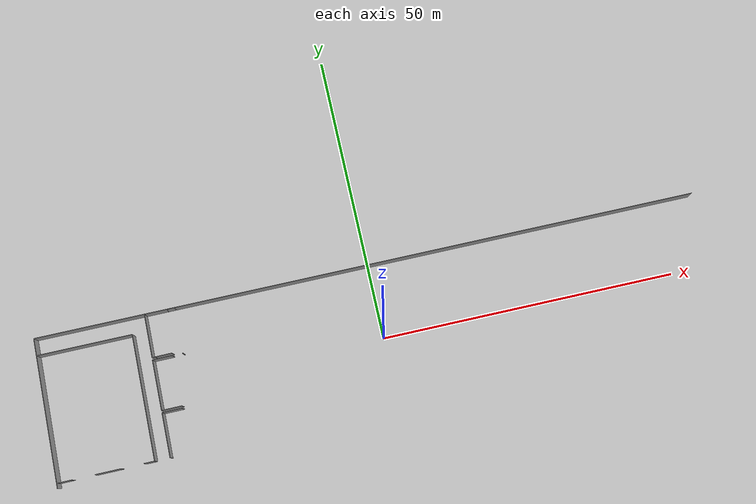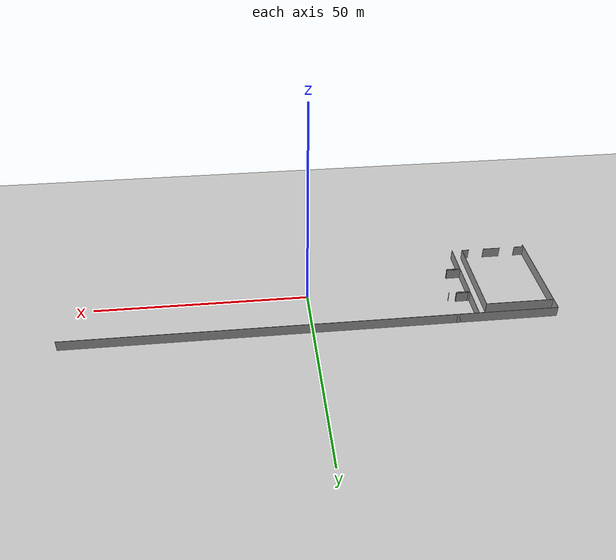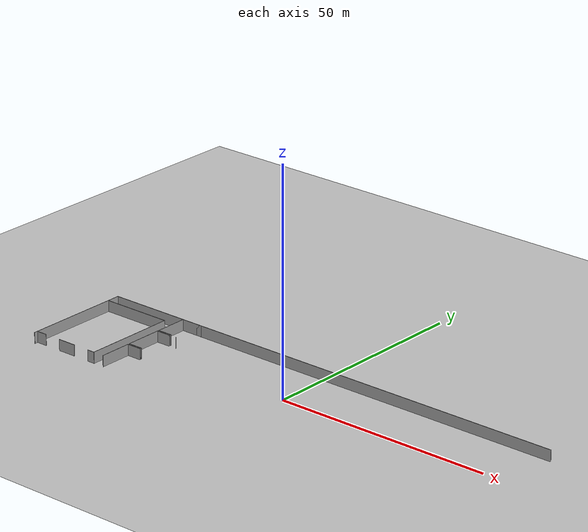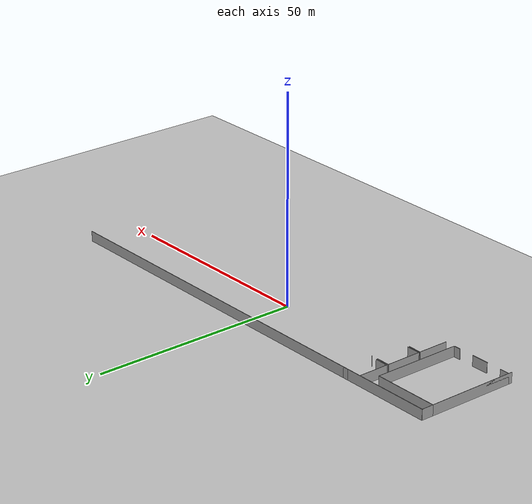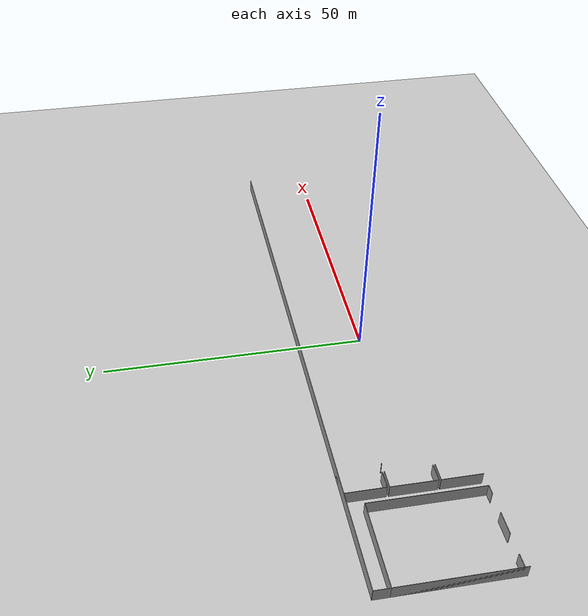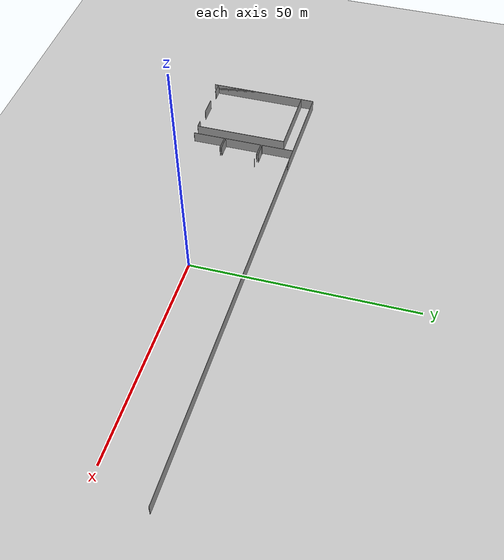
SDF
<sdf version="1.6">
 <world name="default">
  <model name="ground_plane">
   <static>1</static>
   <link name="link">
    <collision name="collision">
     <geometry><plane><normal>0 0 1</normal><size>100 100</size></plane></geometry>
     <surface><friction><ode><mu>100</mu><mu2>50</mu2></ode></friction></surface>
    </collision>
    <visual name="visual">
     <cast_shadows>0</cast_shadows>
     <geometry><plane><normal>0 0 1</normal><size>100 100</size></plane></geometry>
     <material>
      <script><uri>file://media/materials/scripts/gazebo.material</uri><name>Gazebo/Grey</name></script>
     </material>
    </visual>
   </link>
  </model>
  <model name="0510034691_Layout1">
   <static>1</static>
   <link name="Wall_0">
    <collision name="Wall_0_Collision">
     <geometry><box><size>21.0787005262 0.1 2.5</size></box></geometry>
     <pose>10.5393502631 0 1.25 0 0 0</pose>
    </collision>
    <visual name="Wall_0_Visual">
     <pose>10.5393502631 0 1.25 0 0 0</pose>
     <geometry><box><size>21.0787005262 0.1 2.5</size></box></geometry>
     <material>
      <script><uri>file://media/materials/scripts/gazebo.material</uri><name>Gazebo/Grey</name></script>
      <ambient>1 1 1 1</ambient>
     </material>
    </visual>
    <pose>0.0 -23.9743003127 0 0 0 1.57079632679</pose>
   </link>
   <link name="Wall_1">
    <collision name="Wall_1_Collision">
     <geometry><box><size>15.9957040087 0.1 2.5</size></box></geometry>
     <pose>7.99785200437 0 1.25 0 0 0</pose>
    </collision>
    <visual name="Wall_1_Visual">
     <pose>7.99785200437 0 1.25 0 0 0</pose>
     <geometry><box><size>15.9957040087 0.1 2.5</size></box></geometry>
     <material>
      <script><uri>file://media/materials/scripts/gazebo.material</uri><name>Gazebo/Grey</name></script>
      <ambient>1 1 1 1</ambient>
     </material>
    </visual>
    <pose>0.0 -2.89559978647 0 0 0 0.0</pose>
   </link>
   <link name="Wall_2">
    <collision name="Wall_2_Collision">
     <geometry><box><size>21.0752688172 0.1 2.5</size></box></geometry>
     <pose>10.5376344086 0 1.25 0 0 0</pose>
    </collision>
    <visual name="Wall_2_Visual">
     <pose>10.5376344086 0 1.25 0 0 0</pose>
     <geometry><box><size>21.0752688172 0.1 2.5</size></box></geometry>
     <material>
      <script><uri>file://media/materials/scripts/gazebo.material</uri><name>Gazebo/Grey</name></script>
      <ambient>1 1 1 1</ambient>
     </material>
    </visual>
    <pose>15.9957040087 -2.89559978647 0 0 0 -1.57079632679</pose>
   </link>
   <link name="Wall_3">
    <collision name="Wall_3_Collision">
     <geometry><box><size>1.72945423117 0.1 2.5</size></box></geometry>
     <pose>0.864727115585 0 1.25 0 0 0</pose>
    </collision>
    <visual name="Wall_3_Visual">
     <pose>0.864727115585 0 1.25 0 0 0</pose>
     <geometry><box><size>1.72945423117 0.1 2.5</size></box></geometry>
     <material>
      <script><uri>file://media/materials/scripts/gazebo.material</uri><name>Gazebo/Grey</name></script>
      <ambient>1 1 1 1</ambient>
     </material>
    </visual>
    <pose>15.9957040087 -23.9708686037 0 0 0 3.14159265359</pose>
   </link>
   <link name="Wall_4">
    <collision name="Wall_4_Collision">
     <geometry><box><size>4.24299041663 0.1 2.5</size></box></geometry>
     <pose>2.12149520832 0 1.25 0 0 0</pose>
    </collision>
    <visual name="Wall_4_Visual">
     <pose>2.12149520832 0 1.25 0 0 0</pose>
     <geometry><box><size>4.24299041663 0.1 2.5</size></box></geometry>
     <material>
      <script><uri>file://media/materials/scripts/gazebo.material</uri><name>Gazebo/Grey</name></script>
      <ambient>1 1 1 1</ambient>
     </material>
    </visual>
    <pose>10.4819644627 -23.9708686037 0 0 0 3.14159265359</pose>
   </link>
   <link name="Wall_5">
    <collision name="Wall_5_Collision">
     <geometry><box><size>2.45456402988 0.1 2.5</size></box></geometry>
     <pose>1.22728201494 0 1.25 0 0 0</pose>
    </collision>
    <visual name="Wall_5_Visual">
     <pose>1.22728201494 0 1.25 0 0 0</pose>
     <geometry><box><size>2.45456402988 0.1 2.5</size></box></geometry>
     <material>
      <script><uri>file://media/materials/scripts/gazebo.material</uri><name>Gazebo/Grey</name></script>
      <ambient>1 1 1 1</ambient>
     </material>
    </visual>
    <pose>2.45456163095 -23.9708686037 0 0 0 -3.14019456005</pose>
   </link>
   <link name="Wall_6">
    <collision name="Wall_6_Collision">
     <geometry><box><size>0.585424133811 0.1 2.5</size></box></geometry>
     <pose>0.292712066906 0 1.25 0 0 0</pose>
    </collision>
    <visual name="Wall_6_Visual">
     <pose>0.292712066906 0 1.25 0 0 0</pose>
     <geometry><box><size>0.585424133811 0.1 2.5</size></box></geometry>
     <material>
      <script><uri>file://media/materials/scripts/gazebo.material</uri><name>Gazebo/Grey</name></script>
      <ambient>1 1 1 1</ambient>
     </material>
    </visual>
    <pose>19.1292356186 -7.39914588576 0 0 0 3.14159265359</pose>
   </link>
   <link name="Wall_7">
    <collision name="Wall_7_Collision">
     <geometry><box><size>7.39914588576 0.1 2.5</size></box></geometry>
     <pose>3.69957294288 0 1.25 0 0 0</pose>
    </collision>
    <visual name="Wall_7_Visual">
     <pose>3.69957294288 0 1.25 0 0 0</pose>
     <geometry><box><size>7.39914588576 0.1 2.5</size></box></geometry>
     <material>
      <script><uri>file://media/materials/scripts/gazebo.material</uri><name>Gazebo/Grey</name></script>
      <ambient>1 1 1 1</ambient>
     </material>
    </visual>
    <pose>18.5438114848 -7.39914588576 0 0 0 1.57079632679</pose>
   </link>
   <link name="Wall_8">
    <collision name="Wall_8_Collision">
     <geometry><box><size>1.32972368388 0.1 2.5</size></box></geometry>
     <pose>0.664861841938 0 1.25 0 0 0</pose>
    </collision>
    <visual name="Wall_8_Visual">
     <pose>0.664861841938 0 1.25 0 0 0</pose>
     <geometry><box><size>1.32972368388 0.1 2.5</size></box></geometry>
     <material>
      <script><uri>file://media/materials/scripts/gazebo.material</uri><name>Gazebo/Grey</name></script>
      <ambient>1 1 1 1</ambient>
     </material>
    </visual>
    <pose>22.2709016498 -0.0 0 0 0 0.0</pose>
   </link>
   <link name="Wall_10">
    <collision name="Wall_10_Collision">
     <geometry><box><size>2.72959683848 0.1 2.5</size></box></geometry>
     <pose>1.36479841924 0 1.25 0 0 0</pose>
    </collision>
    <visual name="Wall_10_Visual">
     <pose>1.36479841924 0 1.25 0 0 0</pose>
     <geometry><box><size>2.72959683848 0.1 2.5</size></box></geometry>
     <material>
      <script><uri>file://media/materials/scripts/gazebo.material</uri><name>Gazebo/Grey</name></script>
      <ambient>1 1 1 1</ambient>
     </material>
    </visual>
    <pose>21.8587152698 -7.37385291949 0 0 0 -3.13232632976</pose>
   </link>
   <link name="Wall_11">
    <collision name="Wall_11_Collision">
     <geometry><box><size>7.40689900608 0.1 2.5</size></box></geometry>
     <pose>3.70344950304 0 1.25 0 0 0</pose>
    </collision>
    <visual name="Wall_11_Visual">
     <pose>3.70344950304 0 1.25 0 0 0</pose>
     <geometry><box><size>7.40689900608 0.1 2.5</size></box></geometry>
     <material>
      <script><uri>file://media/materials/scripts/gazebo.material</uri><name>Gazebo/Grey</name></script>
      <ambient>1 1 1 1</ambient>
     </material>
    </visual>
    <pose>18.5317369532 -24.0081090012 0 0 0 1.57079632679</pose>
   </link>
   <link name="Wall_12">
    <collision name="Wall_12_Collision">
     <geometry><box><size>3.34006965098 0.1 2.5</size></box></geometry>
     <pose>1.67003482549 0 1.25 0 0 0</pose>
    </collision>
    <visual name="Wall_12_Visual">
     <pose>1.67003482549 0 1.25 0 0 0</pose>
     <geometry><box><size>3.34006965098 0.1 2.5</size></box></geometry>
     <material>
      <script><uri>file://media/materials/scripts/gazebo.material</uri><name>Gazebo/Grey</name></script>
      <ambient>1 1 1 1</ambient>
     </material>
    </visual>
    <pose>18.5317369532 -16.6012099952 0 0 0 0.0</pose>
   </link>
   <link name="Wall_16">
    <collision name="Wall_16_Collision">
     <geometry><box><size>0.0601496199172 0.1 2.5</size></box></geometry>
     <pose>0.0300748099586 0 1.25 0 0 0</pose>
    </collision>
    <visual name="Wall_16_Visual">
     <pose>0.0300748099586 0 1.25 0 0 0</pose>
     <geometry><box><size>0.0601496199172 0.1 2.5</size></box></geometry>
     <material>
      <script><uri>file://media/materials/scripts/gazebo.material</uri><name>Gazebo/Grey</name></script>
      <ambient>1 1 1 1</ambient>
     </material>
    </visual>
    <pose>18.5730445614 -23.9643864867 0 0 0 -2.32780152451</pose>
   </link>
   <link name="Wall_49">
    <collision name="Wall_49_Collision">
     <geometry><box><size>8.48026131828 0.1 2.5</size></box></geometry>
     <pose>4.24013065914 0 1.25 0 0 0</pose>
    </collision>
    <visual name="Wall_49_Visual">
     <pose>4.24013065914 0 1.25 0 0 0</pose>
     <geometry><box><size>8.48026131828 0.1 2.5</size></box></geometry>
     <material>
      <script><uri>file://media/materials/scripts/gazebo.material</uri><name>Gazebo/Grey</name></script>
      <ambient>1 1 1 1</ambient>
     </material>
    </visual>
    <pose>18.5236025318 -16.2445664608 0 0 0 1.57079632679</pose>
   </link>
   <link name="Wall_50">
    <collision name="Wall_50_Collision">
     <geometry><box><size>3.32964742368 0.1 2.5</size></box></geometry>
     <pose>1.66482371184 0 1.25 0 0 0</pose>
    </collision>
    <visual name="Wall_50_Visual">
     <pose>1.66482371184 0 1.25 0 0 0</pose>
     <geometry><box><size>3.32964742368 0.1 2.5</size></box></geometry>
     <material>
      <script><uri>file://media/materials/scripts/gazebo.material</uri><name>Gazebo/Grey</name></script>
      <ambient>1 1 1 1</ambient>
     </material>
    </visual>
    <pose>18.5236025318 -7.76430514248 0 0 0 0.0</pose>
   </link>
   <link name="Wall_51">
    <collision name="Wall_51_Collision">
     <geometry><box><size>0.08719082844 0.1 2.5</size></box></geometry>
     <pose>0.04359541422 0 1.25 0 0 0</pose>
    </collision>
    <visual name="Wall_51_Visual">
     <pose>0.04359541422 0 1.25 0 0 0</pose>
     <geometry><box><size>0.08719082844 0.1 2.5</size></box></geometry>
     <material>
      <script><uri>file://media/materials/scripts/gazebo.material</uri><name>Gazebo/Grey</name></script>
      <ambient>1 1 1 1</ambient>
     </material>
    </visual>
    <pose>23.5313556522 -7.76430514248 0 0 0 0.0</pose>
   </link>
   <link name="Wall_65">
    <collision name="Wall_65_Collision">
     <geometry><box><size>3.35435008418 0.1 2.5</size></box></geometry>
     <pose>1.67717504209 0 1.25 0 0 0</pose>
    </collision>
    <visual name="Wall_65_Visual">
     <pose>1.67717504209 0 1.25 0 0 0</pose>
     <geometry><box><size>3.35435008418 0.1 2.5</size></box></geometry>
     <material>
      <script><uri>file://media/materials/scripts/gazebo.material</uri><name>Gazebo/Grey</name></script>
      <ambient>1 1 1 1</ambient>
     </material>
    </visual>
    <pose>21.8779074201 -16.2271537151 0 0 0 -3.13640153657</pose>
   </link>
   <link name="Wall_367">
    <collision name="Wall_367_Collision">
     <geometry><box><size>24.8463356974 0.1 2.5</size></box></geometry>
     <pose>12.4231678487 0 1.25 0 0 0</pose>
    </collision>
    <visual name="Wall_367_Visual">
     <pose>12.4231678487 0 1.25 0 0 0</pose>
     <geometry><box><size>24.8463356974 0.1 2.5</size></box></geometry>
     <material>
      <script><uri>file://media/materials/scripts/gazebo.material</uri><name>Gazebo/Grey</name></script>
      <ambient>1 1 1 1</ambient>
     </material>
    </visual>
    <pose>0.0 -24.8463356974 0 0 0 1.57079632679</pose>
   </link>
   <link name="Wall_368">
    <collision name="Wall_368_Collision">
     <geometry><box><size>113.046086581 0.1 2.5</size></box></geometry>
     <pose>56.5230432904 0 1.25 0 0 0</pose>
    </collision>
    <visual name="Wall_368_Visual">
     <pose>56.5230432904 0 1.25 0 0 0</pose>
     <geometry><box><size>113.046086581 0.1 2.5</size></box></geometry>
     <material>
      <script><uri>file://media/materials/scripts/gazebo.material</uri><name>Gazebo/Grey</name></script>
      <ambient>1 1 1 1</ambient>
     </material>
    </visual>
   </link>
   <pose>-56.5 12.4463356974 0 0 0 0</pose>
  </model>
 </world>
</sdf>
